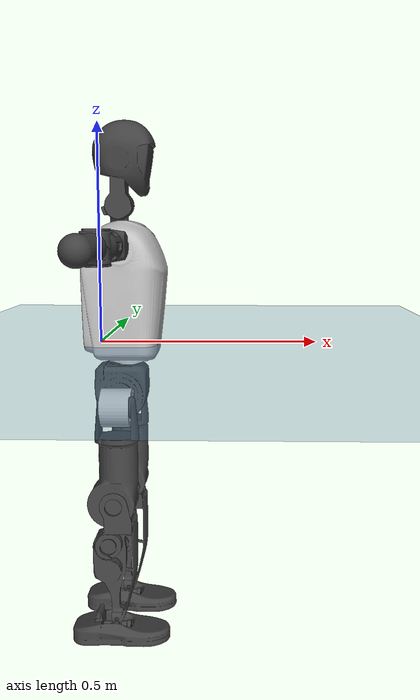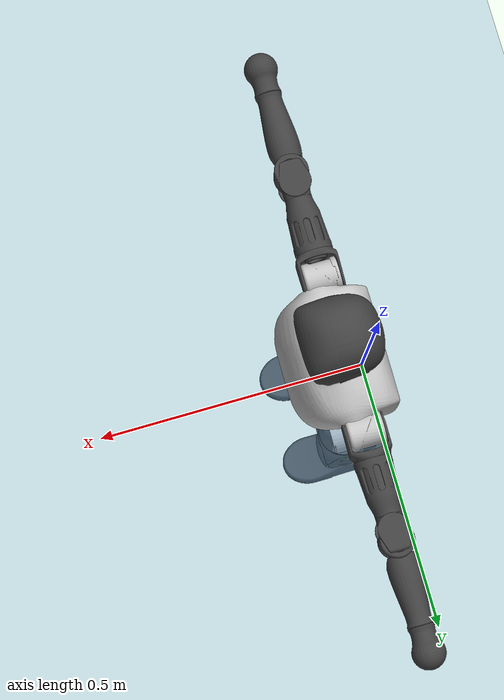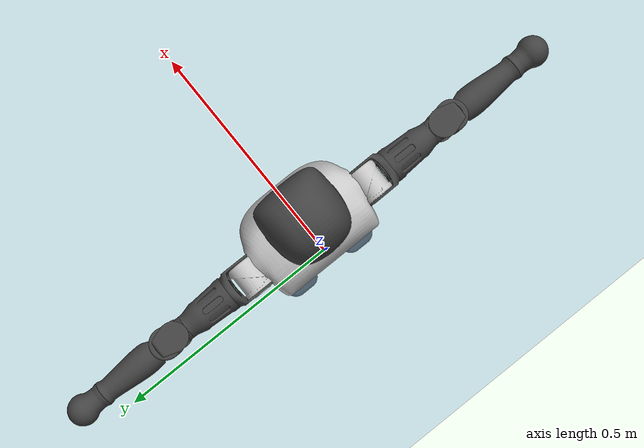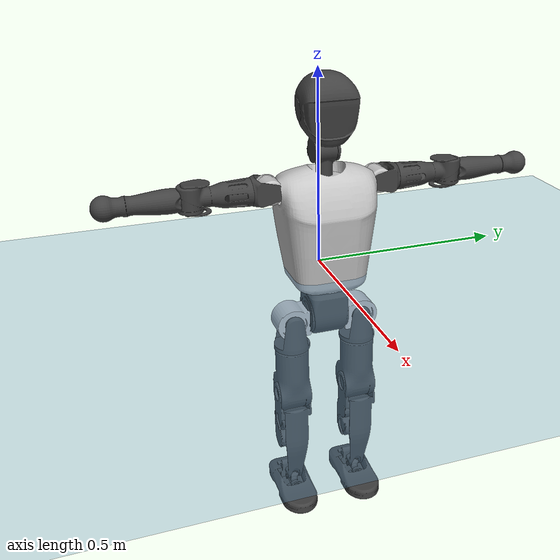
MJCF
<mujoco model="T1">
  <compiler angle="radian" assetdir="assets" balanceinertia="true" inertiafromgeom="false"/>

  <option timestep="0.005" density="1.2" viscosity="2e-05"/>

  <size nkey="1"/>

  <visual>
    <quality shadowsize="8192"/>
    <map shadowclip="0.5"/>
  </visual>

  <default>
    <default class="/">
      <joint armature="0.01" damping="0.01" frictionloss="0.1"/>
      <geom contype="0" conaffinity="0" group="1" solref="-1000 -80"/>
      <site size="0.01 0.005 0.005" group="5"/>
      <general forcelimited="true" biastype="affine" gainprm="25" biasprm="0 -25 -0.6"/>
      <default class="t1">
        <geom rgba="0.25 0.25 0.25 1"/>
        <default class="visual">
          <geom type="mesh" group="2"/>
        </default>
        <default class="collision">
          <geom group="3"/>
        </default>
        <default class="foot">
          <geom size="0.1115 0.05 0.015" type="box" condim="6" group="4" priority="1" solimp="0.015 1 0.015"/>
        </default>
        <default class="reward_collision_sphere">
          <geom group="5" rgba="1 0 0 1"/>
        </default>
      </default>
    </default>
  </default>

  <asset>
    <texture type="skybox" colorspace="auto" name="//unnamed_texture_0" builtin="gradient" rgb1="0.95 0.95 0.95" rgb2="0.95 0.95 0.95" width="100" height="600"/>
    <texture type="2d" colorspace="auto" name="texplane" builtin="checker" rgb1="0.345 0.575 0.748" rgb2="0.345 0.575 0.748" markrgb="1 1 1" width="512" height="512"/>
    <material name="MatPlane" class="/" texture="texplane" texuniform="true" texrepeat="2 2" specular="0.9"/>
    <mesh name="Trunk" class="/" file="Trunk.stl"/>
    <mesh name="H1" class="/" file="H1.stl"/>
    <mesh name="H2" class="/" file="H2.stl"/>
    <mesh name="AL1" class="/" file="AL1.stl"/>
    <mesh name="AL2" class="/" file="AL2.stl"/>
    <mesh name="AL3" class="/" file="AL3.stl"/>
    <mesh name="left_hand_link" class="/" file="left_hand_link.stl"/>
    <mesh name="AR1" class="/" file="AR1.stl"/>
    <mesh name="AR2" class="/" file="AR2.stl"/>
    <mesh name="AR3" class="/" file="AR3.stl"/>
    <mesh name="right_hand_link" class="/" file="right_hand_link.stl"/>
    <mesh name="Waist" class="/" file="Waist.stl"/>
    <mesh name="Hip_Pitch_Left" class="/" file="Hip_Pitch_Left.stl"/>
    <mesh name="Hip_Roll_Left" class="/" file="Hip_Roll_Left.stl"/>
    <mesh name="Hip_Yaw_Left" class="/" file="Hip_Yaw_Left.stl"/>
    <mesh name="Shank_Left" class="/" file="Shank_Left.stl"/>
    <mesh name="Ankle_Cross_Left" class="/" file="Ankle_Cross_Left.stl"/>
    <mesh name="left_foot_link" class="/" file="left_foot_link.stl"/>
    <mesh name="Hip_Pitch_Right" class="/" file="Hip_Pitch_Right.stl"/>
    <mesh name="Hip_Roll_Right" class="/" file="Hip_Roll_Right.stl"/>
    <mesh name="Hip_Yaw_Right" class="/" file="Hip_Yaw_Right.stl"/>
    <mesh name="Shank_Right" class="/" file="Shank_Right.stl"/>
    <mesh name="Ankle_Cross_Right" class="/" file="Ankle_Cross_Right.stl"/>
    <mesh name="right_foot_link" class="/" file="right_foot_link.stl"/>
  </asset>

  <worldbody>
    <geom name="floor" class="/" size="100 100 0.125" type="plane" group="0" material="MatPlane"/>
    <light name="toplight_shadow" class="/" pos="0 0 5" dir="0.0990148 0.0990148 -0.990148" type="directional" ambient="0.04 0.04 0.04" diffuse="0.55 0.55 0.55" specular="0.12 0.12 0.12"/>
    <light name="toplight_fill" class="/" pos="0 0 5" dir="0.0990148 0.0990148 -0.990148" type="directional" castshadow="false" ambient="0.04 0.04 0.04" diffuse="0.3 0.3 0.3" specular="0.08 0.08 0.08"/>
    <body name="trunk" childclass="t1" pos="0.000876029 -0.00127108 -0.000328083" quat="1 -1.12247e-05 -1.33391e-05 -3.34491e-05">
      <inertial pos="0.0419268 0.000422091 0.107644" quat="0.999954 -0.00029663 -0.00960218 -0.000596019" mass="7.86103" diaginertia="0.0235407 0.0378155 0.0640181"/>
      <joint name="//unnamed_joint_0" type="free" armature="0" damping="0" frictionloss="0"/>
      <geom name="//unnamed_geom_1" class="visual" rgba="0.76 0.76 0.76 1" mesh="Trunk"/>
      <geom name="//unnamed_geom_2" class="collision" size="0.0665176 0.0886901 0.133035" pos="0.0458509 0 0.123695" type="box"/>
      <geom name="//unnamed_geom_3" class="reward_collision_sphere" size="0.101994" pos="0.0458509 0 0.103079"/>
      <geom name="//unnamed_geom_4" class="reward_collision_sphere" size="0.0133035" pos="0.0458509 0.0735874 0"/>
      <geom name="//unnamed_geom_5" class="reward_collision_sphere" size="0.0133035" pos="0.0458509 -0.0735874 0"/>
      <geom name="//unnamed_geom_6" class="reward_collision_sphere" size="0.0133035" pos="0.0458509 0.0926336 0.185542"/>
      <geom name="//unnamed_geom_7" class="reward_collision_sphere" size="0.0133035" pos="0.0458509 -0.0926336 0.185542"/>
      <site name="imu" pos="-0.00114808 -0.00933703 0.00150574" size="0.00886901"/>
      <camera name="track" pos="0 -1.73147 0" quat="0.707107 0.707107 0 0" mode="trackcom"/>
      <camera name="ego_camera" pos="0.0932301 0 0.432931" quat="-0.5 -0.5 0.5 0.5"/>
      <body name="H1" pos="0.0465901 -0.000311843 0.249896" quat="1 -0.00018799 -0.000129961 8.80663e-05">
        <inertial pos="-0.00176652 -0.00124944 0.0591735" quat="0.770401 -0.0123128 0.00837223 0.637386" mass="0.304958" diaginertia="6.22607e-05 0.000108614 0.000173135"/>
        <joint name="AAHead_yaw" pos="0 0 0" axis="0.00839054 0.0040902 0.999956" stiffness="0.00334161" range="-1.5766 1.56832" armature="0.00877094" damping="0.0100721" frictionloss="0.0856329"/>
        <geom name="//unnamed_geom_8" class="visual" mesh="H1"/>
        <body name="H2" pos="0.00080286 9.26595e-06 0.0631729" quat="1 -0.000180526 -5.89348e-05 -0.000136804">
          <inertial pos="0.00560238 -0.00155131 0.101862" quat="0.988264 0.108483 -0.0743872 -0.0776739" mass="0.433951" diaginertia="0.000526211 0.000895088 0.00198538"/>
          <joint name="Head_pitch" pos="0 0 0" axis="-0.00288083 -0.99998 0.00569727" range="-1.21851 0.341315" armature="0.00869675" damping="0.00485063" frictionloss="0.0930097"/>
          <geom name="//unnamed_geom_9" class="visual" mesh="H2"/>
          <geom name="//unnamed_geom_10" class="collision" size="0.0709521" pos="0.00764181 0 0.113387"/>
          <geom name="//unnamed_geom_11" class="reward_collision_sphere" size="0.0798211" pos="0.0152836 0 0.103079"/>
        </body>
      </body>
      <body name="AL1" pos="0.0461917 0.0931461 0.225516" quat="1 -5.21665e-05 4.20448e-07 4.35927e-05">
        <inertial pos="-0.000465427 0.0378803 -0.00231634" quat="0.511267 0.498549 -0.497904 0.492084" mass="0.381351" diaginertia="0.00036692 0.000644308 0.000352091"/>
        <joint name="Left_Shoulder_Pitch" pos="0 0 0" axis="-0.00360295 0.999947 0.00966436" range="-3.30547 1.23849" armature="0.00926433" damping="0.00800352" frictionloss="0.0893183"/>
        <geom name="//unnamed_geom_12" class="visual" rgba="0.76 0.76 0.76 1" mesh="AL1"/>
        <body name="AL2" pos="0.000653408 0.0406423 -0.00116823" quat="0.999999 0.000582152 -0.000909689 0.000350552">
          <inertial pos="0.00362229 0.0303063 -0.000309447" quat="0.488345 0.51196 -0.488108 0.511044" mass="0.110194" diaginertia="0.000105267 0.000168274 0.000203049"/>
          <joint name="Left_Shoulder_Roll" pos="0 0 0" axis="-0.999938 0.002297 0.0108534" range="-1.53263 1.75807" armature="0.00929688" damping="0" frictionloss="0.0971937"/>
          <geom name="//unnamed_geom_13" class="visual" mesh="AL2"/>
          <body name="AL3" pos="0.00164899 0.0551914 0.000359362" quat="1 0.000290121 -0.000789726 -0.000378715">
            <inertial pos="-0.000577335 0.072366 0.000796801" quat="0.706078 0.708134 0.000173418 0.00063811" mass="0.737598" diaginertia="0.00336732 0.00638445 0.000704957"/>
            <joint name="Left_Elbow_Pitch" pos="0 0 0" axis="-0.00262734 -0.999983 -0.00525006" range="-2.22405 2.22224" armature="0.00980844" damping="0" frictionloss="0.0930513"/>
            <geom name="//unnamed_geom_14" class="visual" mesh="AL3"/>
            <geom name="//unnamed_geom_15" class="collision" size="0.026607 0.0665176" pos="0 0.0432867 0" quat="0.707105 0.707108 0 0" type="cylinder"/>
            <geom name="//unnamed_geom_16" class="reward_collision_sphere" size="0.0319284"/>
            <body name="left_hand_link" pos="0.000269225 0.127434 -0.00118302" quat="1 -4.96466e-05 9.55314e-05 0.000176773">
              <inertial pos="-0.000120286 0.0945574 -0.000825722" quat="0.70824 0.705971 -0.000529958 -0.00116427" mass="0.227649" diaginertia="0.00210974 0.00395842 0.000248071"/>
              <joint name="Left_Elbow_Yaw" pos="0 0 0" axis="-0.00492062 0.000443313 0.999988" range="-2.44815 0.000594571" armature="0.00936618" damping="0.0116714" frictionloss="0.088322"/>
              <geom name="//unnamed_geom_17" class="visual" mesh="left_hand_link"/>
              <geom name="//unnamed_geom_18" class="collision" size="0.026607 0.0776038" pos="0 0.112545 0" quat="0.707105 0.707108 0 0" type="cylinder"/>
              <geom name="//unnamed_geom_19" class="reward_collision_sphere" size="0.0443451"/>
              <geom name="//unnamed_geom_20" class="reward_collision_sphere" size="0.0310415" pos="0 0.0952308 0"/>
              <geom name="//unnamed_geom_21" class="reward_collision_sphere" size="0.0310415" pos="0 0.186133 0"/>
            </body>
          </body>
        </body>
      </body>
      <body name="AR1" pos="0.0438941 -0.0925405 0.22528" quat="1 -6.41326e-05 0.000454077 -3.82723e-05">
        <inertial pos="-0.00057062 -0.0410821 0.0019351" quat="0.504223 0.494791 -0.505098 0.495799" mass="0.369225" diaginertia="0.000348498 0.000622707 0.000342148"/>
        <joint name="Right_Shoulder_Pitch" pos="0 0 0" axis="-0.00174232 -0.999998 -0.00116356" range="-1.20672 3.30756" armature="0.00886768" damping="0.00105876" frictionloss="0.0859956"/>
        <geom name="//unnamed_geom_22" class="visual" rgba="0.76 0.76 0.76 1" mesh="AR1"/>
        <body name="AR2" pos="-0.000297912 -0.0383004 0.00048342" quat="1 -0.000202648 -9.70757e-05 -5.97498e-05">
          <inertial pos="0.00297535 -0.0329315 -0.0018203" quat="0.511617 0.488488 -0.510915 0.48846" mass="0.109736" diaginertia="0.000102553 0.000161417 0.000198892"/>
          <joint name="Right_Shoulder_Roll" pos="0 0 0" axis="-0.999951 0.00951652 0.00281171" stiffness="0.0088928" range="-1.72012 1.60835" armature="0.00900227" damping="0" frictionloss="0.0896353"/>
          <geom name="//unnamed_geom_23" class="visual" mesh="AR2"/>
          <body name="AR3" pos="0.000336895 -0.0531751 -2.82482e-05" quat="1 4.86447e-05 -5.66516e-05 2.66369e-05">
            <inertial pos="-0.00136528 -0.0736727 2.87327e-05" quat="0.70805 0.706162 0.000684036 0.000828592" mass="0.707289" diaginertia="0.00331575 0.00619982 0.000711225"/>
            <joint name="Right_Elbow_Pitch" pos="0 0 0" axis="0.00529758 0.999985 -0.00111043" range="-2.27584 2.26221" armature="0.00978809" damping="0.00999443" frictionloss="0.0798831"/>
            <geom name="//unnamed_geom_24" class="visual" mesh="AR3"/>
            <geom name="//unnamed_geom_25" class="collision" size="0.026607 0.0665176" pos="0 -0.0432867 0" quat="0.707105 0.707108 0 0" type="cylinder"/>
            <geom name="//unnamed_geom_26" class="reward_collision_sphere" size="0.0319284"/>
            <body name="right_hand_link" pos="-0.000719505 -0.126876 -0.000452587" quat="1 0.000104024 0.000197632 -8.00894e-06">
              <inertial pos="0.000250504 -0.0953662 -0.00153454" quat="0.702497 0.711609 0.01047 -0.000180964" mass="0.236103" diaginertia="0.00207958 0.00395457 0.000250864"/>
              <joint name="Right_Elbow_Yaw" pos="0 0 0" axis="-0.00179332 0.000705768 0.999998" range="-0.0413132 2.48466" armature="0.00891724" damping="0.012711" frictionloss="0.0843606"/>
              <geom name="//unnamed_geom_27" class="visual" mesh="right_hand_link"/>
              <geom name="//unnamed_geom_28" class="collision" size="0.026607 0.0776038" pos="0 -0.112545 0" quat="0.707105 0.707108 0 0" type="cylinder"/>
              <geom name="//unnamed_geom_29" class="reward_collision_sphere" size="0.0443451"/>
              <geom name="//unnamed_geom_30" class="reward_collision_sphere" size="0.0310415" pos="0 -0.0952308 0"/>
              <geom name="//unnamed_geom_31" class="reward_collision_sphere" size="0.0310415" pos="0 -0.186133 0"/>
            </body>
          </body>
        </body>
      </body>
      <body name="Waist" pos="0.0471878 -0.00124328 -0.118926" quat="1 0.000228481 -4.32491e-05 -0.000157679">
        <inertial pos="0.00049968 -0.000721194 0.00729616" quat="0.983567 -0.000264024 -0.180494 0.00428021" mass="1.79917" diaginertia="0.0013783 0.00256474 0.00553586"/>
        <joint name="Waist" pos="0 0 0" axis="0.00718546 -0.00625724 0.999955" range="-1.57459 1.55953" armature="0.00840941" damping="0.0203812" frictionloss="0.0818267"/>
        <geom name="//unnamed_geom_32" class="visual" mesh="Waist"/>
        <body name="Hip_Pitch_Left" pos="0.00122598 0.0931936 0.000814142" quat="1 0.000332171 1.22187e-05 7.0741e-05">
          <inertial pos="0.00300842 -0.00720764 -0.0207817" quat="0.974266 0.224197 0.0224245 -0.00613511" mass="0.715097" diaginertia="0.000472141 0.00070518 0.00143738"/>
          <joint name="Left_Hip_Pitch" pos="0 0 0" axis="-0.0011051 0.999996 -0.00266622" range="-1.79491 1.61071" armature="0.0086277" damping="0" frictionloss="0.0899636"/>
          <geom name="//unnamed_geom_33" class="visual" rgba="0.76 0.76 0.76 1" mesh="Hip_Pitch_Left"/>
          <body name="Hip_Roll_Left" pos="0.00169973 -0.00124719 -0.0191193" quat="1 -4.18545e-05 -6.77935e-05 6.28679e-06">
            <inertial pos="0.000761466 0.00142572 -0.0553187" quat="0.704659 -0.00633273 -0.00504954 0.7095" mass="0.256834" diaginertia="0.000452816 0.000704481 0.000580197"/>
            <joint name="Left_Hip_Roll" pos="0 0 0" axis="-0.99998 -0.00576517 -0.00248976" range="-1.56519 0.186731" armature="0.00911885" damping="0.00800849" frictionloss="0.0855837"/>
            <geom name="//unnamed_geom_34" class="visual" mesh="Hip_Roll_Left"/>
            <geom name="//unnamed_geom_35" class="reward_collision_sphere" size="0.0487796"/>
            <body name="Hip_Yaw_Left" pos="0.00125447 0.000545101 -0.0841034" quat="1 6.69397e-05 9.59062e-05 -0.000119231">
              <inertial pos="-0.00516851 -0.000247094 -0.0923014" quat="0.702809 -0.0397703 -0.0351407 0.709396" mass="1.49738" diaginertia="0.00674025 0.0123549 0.00307349"/>
              <joint name="Left_Hip_Yaw" pos="0 0 0" axis="-0.0078113 0.000204962 -0.999969" range="-1.01863 0.984467" armature="0.00867456" damping="0.00340503" frictionloss="0.0880511"/>
              <geom name="//unnamed_geom_36" class="visual" mesh="Hip_Yaw_Left"/>
              <geom name="//unnamed_geom_37" class="collision" size="0.0443451 0.0709521" type="cylinder"/>
              <body name="Shank_Left" pos="-0.00915616 0.00167025 -0.140498" quat="1 -0.00011549 2.13457e-05 6.27011e-05">
                <inertial pos="-0.00522443 -0.001888 -0.128096" quat="0.997578 0.00116738 -0.0230983 0.0655989" mass="1.19981" diaginertia="0.00925555 0.0167985 0.00221299"/>
                <joint name="Left_Knee_Pitch" pos="0 0 0" axis="-0.00157172 0.999993 0.0034773" range="-0.00932192 2.3394" armature="0.00843556" damping="0.00818902" frictionloss="0.0998922"/>
                <geom name="//unnamed_geom_38" class="visual" mesh="Shank_Left"/>
                <geom name="//unnamed_geom_39" class="collision" size="0.0443451 0.0665176" pos="0 0 -0.123695" type="cylinder"/>
                <geom name="//unnamed_geom_40" class="reward_collision_sphere" size="0.0576486"/>
                <body name="Ankle_Cross_Left" pos="-0.0013691 -0.0012467 -0.289534" quat="1 3.27972e-05 4.11049e-05 4.951e-05">
                  <inertial pos="-0.00310188 -0.000309782 -0.00832901" quat="0.443825 0.551669 0.55081 0.441915" mass="0.0489929" diaginertia="7.42981e-06 1.17331e-05 1.27476e-05"/>
                  <joint name="Left_Ankle_Pitch" pos="0 0 0" axis="0.000432603 0.999916 -0.0129871" range="-0.850695 0.366628" armature="0.00882803" damping="0.00943337" frictionloss="0.0913326"/>
                  <geom name="//unnamed_geom_41" class="visual" mesh="Ankle_Cross_Left"/>
                  <body name="left_foot_link" pos="-0.000813381 -0.000256788 -0.0125636" quat="0.999999 4.62885e-05 -0.00117963 0.000372601">
                    <inertial pos="0.00190867 9.4528e-05 -0.00843391" quat="0.000244282 0.615815 0.00253097 0.787886" mass="0.470976" diaginertia="0.000695906 0.00115037 0.0024907"/>
                    <joint name="Left_Ankle_Roll" pos="0 0 0" axis="-0.999994 0.00108901 -0.00322367" stiffness="0.00192857" range="-0.433042 0.4457" armature="0.00888051" damping="0.00250834" frictionloss="0.0843046"/>
                    <geom name="//unnamed_geom_42" class="visual" mesh="left_foot_link"/>
                    <geom name="left_foot" class="foot" size="0.104884 0.042675 0.0122644" pos="0.00764181 0 -0.0154618"/>
                    <geom name="//unnamed_geom_44" class="reward_collision_sphere" size="0.0461189" pos="0.00764181 0 -0.0154618"/>
                    <geom name="//unnamed_geom_45" class="reward_collision_sphere" size="0.026607" pos="0.0725972 -0.0199119 -0.0154618"/>
                    <geom name="//unnamed_geom_46" class="reward_collision_sphere" size="0.026607" pos="-0.0534927 -0.0199119 -0.0154618"/>
                    <site name="left_foot" class="foot" pos="0.00764181 0 -0.0154618" size="0.00886901"/>
                  </body>
                </body>
              </body>
            </body>
          </body>
        </body>
        <body name="Hip_Pitch_Right" pos="-0.00181646 -0.091521 0.000749442" quat="1 0.000137708 0.000257347 0.00053272">
          <inertial pos="0.000532036 0.00761738 -0.0169931" quat="0.973005 -0.230374 0.0130471 -0.00435718" mass="0.725249" diaginertia="0.00047471 0.000717656 0.00146779"/>
          <joint name="Right_Hip_Pitch" pos="0 0 0" axis="0.000767227 -0.99999 -0.00436025" stiffness="0.00312492" range="-1.56998 1.78781" armature="0.00862571" damping="0.00212277" frictionloss="0.0922034"/>
          <geom name="//unnamed_geom_47" class="visual" rgba="0.76 0.76 0.76 1" mesh="Hip_Pitch_Right"/>
          <body name="Hip_Roll_Right" pos="0.00137677 0.000813846 -0.0198835" quat="1 0.000116506 7.97098e-05 2.64617e-05">
            <inertial pos="-0.000495966 0.000128733 -0.0564896" quat="0.705849 -0.00706754 -0.0066092 0.708296" mass="0.273285" diaginertia="0.000455212 0.000735854 0.000603379"/>
            <joint name="Right_Hip_Roll" pos="0 0 0" axis="-0.999995 -0.00116598 0.00299944" stiffness="0.00139133" range="-0.203535 1.58022" armature="0.00869215" damping="0.0067863" frictionloss="0.0903751"/>
            <geom name="//unnamed_geom_48" class="visual" mesh="Hip_Roll_Right"/>
            <geom name="//unnamed_geom_49" class="reward_collision_sphere" size="0.0487796"/>
            <body name="Hip_Yaw_Right" pos="0.000271904 -0.000434028 -0.0842147" quat="1 0.0001718 -0.000265824 -2.40285e-05">
              <inertial pos="-0.00475095 -0.00217152 -0.0898516" quat="0.713352 -0.0328606 -0.0330911 0.699253" mass="1.55977" diaginertia="0.00675704 0.0127639 0.00302522"/>
              <joint name="Right_Hip_Yaw" pos="0 0 0" axis="0.0011628 -0.00308435 -0.999995" stiffness="0.00887037" range="-0.99642 1.00493" armature="0.00784104" damping="0.00444454" frictionloss="0.0906055"/>
              <geom name="//unnamed_geom_50" class="visual" mesh="Hip_Yaw_Right"/>
              <geom name="//unnamed_geom_51" class="collision" size="0.0443451 0.0709521" type="cylinder"/>
              <body name="Shank_Right" pos="-0.00839969 -0.00100187 -0.13755" quat="1 -7.92876e-05 -6.36761e-05 4.73006e-05">
                <inertial pos="-0.00236852 0.00223345 -0.127469" quat="0.999412 -0.000309651 -0.0198286 -0.0279859" mass="1.28611" diaginertia="0.00972945 0.0177148 0.00235997"/>
                <joint name="Right_Knee_Pitch" pos="0 0 0" axis="0.00368943 -0.999992 -0.00118157" range="-2.33995 -0.0018306" armature="0.0084453" damping="0.00718262" frictionloss="0.0860924"/>
                <geom name="//unnamed_geom_52" class="visual" mesh="Shank_Right"/>
                <geom name="//unnamed_geom_53" class="collision" size="0.0443451 0.0665176" pos="0 0 -0.123695" type="cylinder"/>
                <geom name="//unnamed_geom_54" class="reward_collision_sphere" size="0.0576486"/>
                <body name="Ankle_Cross_Right" pos="0.000458844 -0.00155559 -0.28884" quat="1 -0.000183889 0.000341649 -0.000147946">
                  <inertial pos="-0.00384109 0.00021606 -0.00812197" quat="0.441267 0.551919 0.551611 0.443164" mass="0.0502059" diaginertia="7.63534e-06 1.24148e-05 1.31994e-05"/>
                  <joint name="Right_Ankle_Pitch" pos="0 0 0" axis="-0.0110824 -0.999908 -0.00788187" range="-0.329455 0.875415" armature="0.00865539" damping="0.00503522" frictionloss="0.0841491"/>
                  <geom name="//unnamed_geom_55" class="visual" mesh="Ankle_Cross_Right"/>
                  <body name="right_foot_link" pos="0.000145174 -0.00240284 -0.0112666" quat="1 -0.000130442 0.000157559 2.50586e-05">
                    <inertial pos="0.0022857 0.000150928 -0.00904151" quat="0.00476594 0.622366 0.000738879 0.782712" mass="0.480515" diaginertia="0.000724 0.00115081 0.0025584"/>
                    <joint name="Right_Ankle_Roll" pos="0 0 0" axis="-0.999958 -0.00658769 0.00643632" range="-0.441562 0.458635" armature="0.00845764" damping="0.00401578" frictionloss="0.079294"/>
                    <geom name="//unnamed_geom_56" class="visual" mesh="right_foot_link"/>
                    <geom name="right_foot" class="foot" size="0.0995333 0.0425376 0.0132259" pos="0.00764181 0 -0.0154618"/>
                    <geom name="//unnamed_geom_58" class="reward_collision_sphere" size="0.035476"/>
                    <geom name="//unnamed_geom_59" class="reward_collision_sphere" size="0.026607" pos="0.00764181 0 -0.0154618"/>
                    <geom name="//unnamed_geom_60" class="reward_collision_sphere" size="0.026607" pos="0.0725972 0.0199119 -0.0154618"/>
                    <geom name="//unnamed_geom_61" class="reward_collision_sphere" size="0.026607" pos="-0.0534927 0.0199119 -0.0154618"/>
                    <site name="right_foot" class="foot" pos="0.00764181 0 -0.0154618" size="0.00886901"/>
                  </body>
                </body>
              </body>
            </body>
          </body>
        </body>
      </body>
    </body>
  </worldbody>

  <contact>
    <pair class="/" geom1="floor" geom2="left_foot" name="//unnamed_contact_0"/>
    <pair class="/" geom1="floor" geom2="right_foot" name="//unnamed_contact_1"/>
  </contact>

  <actuator>
    <general name="AAHead_yaw" class="/" joint="AAHead_yaw" forcerange="-5.79544 5.79544" gainprm="22.6748" biasprm="0 -22.6748 -0.511724"/>
    <general name="Head_pitch" class="/" joint="Head_pitch" forcerange="-5.97847 5.97847" gainprm="22.6748" biasprm="0 -22.6748 -0.511724"/>
    <general name="Left_Shoulder_Pitch" class="/" joint="Left_Shoulder_Pitch" forcerange="-15.8182 15.8182" gainprm="22.6748" biasprm="0 -22.6748 -0.511724"/>
    <general name="Left_Shoulder_Roll" class="/" joint="Left_Shoulder_Roll" forcerange="-15.2954 15.2954" gainprm="22.6748" biasprm="0 -22.6748 -0.511724"/>
    <general name="Left_Elbow_Pitch" class="/" joint="Left_Elbow_Pitch" forcerange="-16.7222 16.7222" gainprm="22.6748" biasprm="0 -22.6748 -0.511724"/>
    <general name="Left_Elbow_Yaw" class="/" joint="Left_Elbow_Yaw" forcerange="-17.5101 17.5101" gainprm="22.6748" biasprm="0 -22.6748 -0.511724"/>
    <general name="Right_Shoulder_Pitch" class="/" joint="Right_Shoulder_Pitch" forcerange="-16.0745 16.0745" gainprm="22.6748" biasprm="0 -22.6748 -0.511724"/>
    <general name="Right_Shoulder_Roll" class="/" joint="Right_Shoulder_Roll" forcerange="-16.661 16.661" gainprm="22.6748" biasprm="0 -22.6748 -0.511724"/>
    <general name="Right_Elbow_Pitch" class="/" joint="Right_Elbow_Pitch" forcerange="-16.1109 16.1109" gainprm="22.6748" biasprm="0 -22.6748 -0.511724"/>
    <general name="Right_Elbow_Yaw" class="/" joint="Right_Elbow_Yaw" forcerange="-15.2508 15.2508" gainprm="22.6748" biasprm="0 -22.6748 -0.511724"/>
    <general name="Waist" class="/" joint="Waist" forcerange="-26.7176 26.7176" gainprm="22.6748" biasprm="0 -22.6748 -0.511724"/>
    <general name="Left_Hip_Pitch" class="/" joint="Left_Hip_Pitch" forcerange="-39.892 39.892" gainprm="22.6748" biasprm="0 -22.6748 -0.511724"/>
    <general name="Left_Hip_Roll" class="/" joint="Left_Hip_Roll" forcerange="-26.4855 26.4855" gainprm="22.6748" biasprm="0 -22.6748 -0.511724"/>
    <general name="Left_Hip_Yaw" class="/" joint="Left_Hip_Yaw" forcerange="-25.5966 25.5966" gainprm="22.6748" biasprm="0 -22.6748 -0.511724"/>
    <general name="Left_Knee_Pitch" class="/" joint="Left_Knee_Pitch" forcerange="-52.7827 52.7827" gainprm="22.6748" biasprm="0 -22.6748 -0.511724"/>
    <general name="Left_Ankle_Pitch" class="/" joint="Left_Ankle_Pitch" forcerange="-17.105 17.105" gainprm="22.6748" biasprm="0 -22.6748 -0.511724"/>
    <general name="Left_Ankle_Roll" class="/" joint="Left_Ankle_Roll" forcerange="-13.292 13.292" gainprm="22.6748" biasprm="0 -22.6748 -0.511724"/>
    <general name="Right_Hip_Pitch" class="/" joint="Right_Hip_Pitch" forcerange="-39.1136 39.1136" gainprm="22.6748" biasprm="0 -22.6748 -0.511724"/>
    <general name="Right_Hip_Roll" class="/" joint="Right_Hip_Roll" forcerange="-26.6251 26.6251" gainprm="22.6748" biasprm="0 -22.6748 -0.511724"/>
    <general name="Right_Hip_Yaw" class="/" joint="Right_Hip_Yaw" forcerange="-27.0711 27.0711" gainprm="22.6748" biasprm="0 -22.6748 -0.511724"/>
    <general name="Right_Knee_Pitch" class="/" joint="Right_Knee_Pitch" forcerange="-54.0091 54.0091" gainprm="22.6748" biasprm="0 -22.6748 -0.511724"/>
    <general name="Right_Ankle_Pitch" class="/" joint="Right_Ankle_Pitch" forcerange="-17.0429 17.0429" gainprm="22.6748" biasprm="0 -22.6748 -0.511724"/>
    <general name="Right_Ankle_Roll" class="/" joint="Right_Ankle_Roll" forcerange="-13.3247 13.3247" gainprm="22.6748" biasprm="0 -22.6748 -0.511724"/>
  </actuator>

  <sensor>
    <gyro site="imu" name="imu_angular_velocity"/>
    <velocimeter site="imu" name="imu_linear_velocity"/>
    <framelinvel objtype="site" objname="left_foot" name="left_foot_global_linear_velocity"/>
    <framelinvel objtype="site" objname="right_foot" name="right_foot_global_linear_velocity"/>
  </sensor>

  <keyframe>
    <key name="home" qpos="0 0 0.6385 1 0 0 0 0 0 0 1.4 0 -0.4 0 -1.4 0 0.4 0 -0.4 0 0 0.8 -0.4 0 0.4 0 0 -0.8 0.4 0"/>
  </keyframe>
</mujoco>
